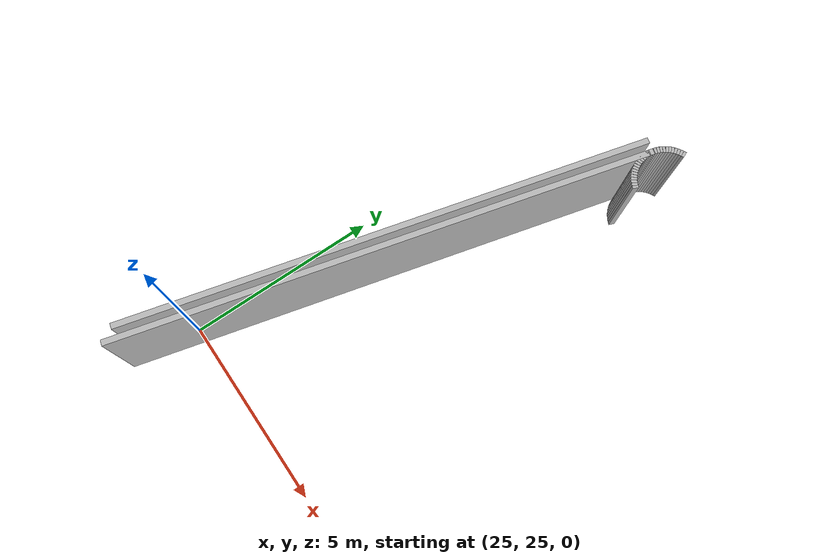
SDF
<sdf version="1.6">
 <model name="sps_0108">
  <static>1</static>
  <allow_auto_disable>0</allow_auto_disable>
  <link name="Wall1127">
   <collision name="collision"><geometry><box><size>13.2899 0.15 2.5</size></box></geometry></collision>
   <visual name="visual">
    <geometry><box><size>13.2899 0.15 2.5</size></box></geometry>
    <transparency>0.0</transparency>
   </visual>
   <pose>26.221 29.9924 1.25 0 0 -1.81855</pose>
  </link>
  <link name="Wall3856">
   <collision name="collision"><geometry><box><size>0.0697444 0.15 2.5</size></box></geometry></collision>
   <visual name="visual">
    <geometry><box><size>0.0697444 0.15 2.5</size></box></geometry>
    <transparency>0.0</transparency>
   </visual>
   <pose>28.6103 35.4265 1.25 0 -0 2.74727</pose>
  </link>
  <link name="Wall3857">
   <collision name="collision"><geometry><box><size>0.0697232 0.15 2.5</size></box></geometry></collision>
   <visual name="visual">
    <geometry><box><size>0.0697232 0.15 2.5</size></box></geometry>
    <transparency>0.0</transparency>
   </visual>
   <pose>28.5472 35.456 1.25 0 -0 2.66111</pose>
  </link>
  <link name="Wall3858">
   <collision name="collision"><geometry><box><size>0.069979 0.15 2.5</size></box></geometry></collision>
   <visual name="visual">
    <geometry><box><size>0.069979 0.15 2.5</size></box></geometry>
    <transparency>0.0</transparency>
   </visual>
   <pose>28.4867 35.4909 1.25 0 -0 2.5744</pose>
  </link>
  <link name="Wall3859">
   <collision name="collision"><geometry><box><size>0.0695601 0.15 2.5</size></box></geometry></collision>
   <visual name="visual">
    <geometry><box><size>0.0695601 0.15 2.5</size></box></geometry>
    <transparency>0.0</transparency>
   </visual>
   <pose>28.4296 35.5309 1.25 0 -0 2.48686</pose>
  </link>
  <link name="Wall3860">
   <collision name="collision"><geometry><box><size>0.0699406 0.15 2.5</size></box></geometry></collision>
   <visual name="visual">
    <geometry><box><size>0.0699406 0.15 2.5</size></box></geometry>
    <transparency>0.0</transparency>
   </visual>
   <pose>28.3763 35.5757 1.25 0 -0 2.40002</pose>
  </link>
  <link name="Wall3861">
   <collision name="collision"><geometry><box><size>0.069817 0.15 2.5</size></box></geometry></collision>
   <visual name="visual">
    <geometry><box><size>0.069817 0.15 2.5</size></box></geometry>
    <transparency>0.0</transparency>
   </visual>
   <pose>28.327 35.6251 1.25 0 -0 2.31043</pose>
  </link>
  <link name="Wall3862">
   <collision name="collision"><geometry><box><size>0.069709 0.15 2.5</size></box></geometry></collision>
   <visual name="visual">
    <geometry><box><size>0.069709 0.15 2.5</size></box></geometry>
    <transparency>0.0</transparency>
   </visual>
   <pose>28.2821 35.6785 1.25 0 -0 2.22831</pose>
  </link>
  <link name="Wall3863">
   <collision name="collision"><geometry><box><size>0.0698481 0.15 2.5</size></box></geometry></collision>
   <visual name="visual">
    <geometry><box><size>0.0698481 0.15 2.5</size></box></geometry>
    <transparency>0.0</transparency>
   </visual>
   <pose>28.2421 35.7356 1.25 0 -0 2.13505</pose>
  </link>
  <link name="Wall3864">
   <collision name="collision"><geometry><box><size>0.0697232 0.15 2.5</size></box></geometry></collision>
   <visual name="visual">
    <geometry><box><size>0.0697232 0.15 2.5</size></box></geometry>
    <transparency>0.0</transparency>
   </visual>
   <pose>28.2074 35.796 1.25 0 -0 2.05128</pose>
  </link>
  <link name="Wall3865">
   <collision name="collision"><geometry><box><size>0.0699135 0.15 2.5</size></box></geometry></collision>
   <visual name="visual">
    <geometry><box><size>0.0699135 0.15 2.5</size></box></geometry>
    <transparency>0.0</transparency>
   </visual>
   <pose>28.1778 35.8592 1.25 0 -0 1.96411</pose>
  </link>
  <link name="Wall3866">
   <collision name="collision"><geometry><box><size>0.0697662 0.15 2.5</size></box></geometry></collision>
   <visual name="visual">
    <geometry><box><size>0.0697662 0.15 2.5</size></box></geometry>
    <transparency>0.0</transparency>
   </visual>
   <pose>28.154 35.9248 1.25 0 -0 1.87373</pose>
  </link>
  <link name="Wall3867">
   <collision name="collision"><geometry><box><size>0.069671 0.15 2.5</size></box></geometry></collision>
   <visual name="visual">
    <geometry><box><size>0.069671 0.15 2.5</size></box></geometry>
    <transparency>0.0</transparency>
   </visual>
   <pose>28.136 35.9921 1.25 0 -0 1.7907</pose>
  </link>
  <link name="Wall3868">
   <collision name="collision"><geometry><box><size>0.0699746 0.15 2.5</size></box></geometry></collision>
   <visual name="visual">
    <geometry><box><size>0.0699746 0.15 2.5</size></box></geometry>
    <transparency>0.0</transparency>
   </visual>
   <pose>28.124 36.0608 1.25 0 -0 1.69937</pose>
  </link>
  <link name="Wall3869">
   <collision name="collision"><geometry><box><size>0.0697162 0.15 2.5</size></box></geometry></collision>
   <visual name="visual">
    <geometry><box><size>0.0697162 0.15 2.5</size></box></geometry>
    <transparency>0.0</transparency>
   </visual>
   <pose>28.1179 36.1303 1.25 0 -0 1.61721</pose>
  </link>
  <link name="Wall3870">
   <collision name="collision"><geometry><box><size>0.0698381 0.15 2.5</size></box></geometry></collision>
   <visual name="visual">
    <geometry><box><size>0.0698381 0.15 2.5</size></box></geometry>
    <transparency>0.0</transparency>
   </visual>
   <pose>28.1179 36.2 1.25 0 -0 1.52446</pose>
  </link>
  <link name="Wall3871">
   <collision name="collision"><geometry><box><size>0.069793 0.15 2.5</size></box></geometry></collision>
   <visual name="visual">
    <geometry><box><size>0.069793 0.15 2.5</size></box></geometry>
    <transparency>0.0</transparency>
   </visual>
   <pose>28.124 36.2695 1.25 0 -0 1.44189</pose>
  </link>
  <link name="Wall3872">
   <collision name="collision"><geometry><box><size>0.0698497 0.15 2.5</size></box></geometry></collision>
   <visual name="visual">
    <geometry><box><size>0.0698497 0.15 2.5</size></box></geometry>
    <transparency>0.0</transparency>
   </visual>
   <pose>28.136 36.3382 1.25 0 -0 1.35146</pose>
  </link>
  <link name="Wall3873">
   <collision name="collision"><geometry><box><size>0.0696464 0.15 2.5</size></box></geometry></collision>
   <visual name="visual">
    <geometry><box><size>0.0696464 0.15 2.5</size></box></geometry>
    <transparency>0.0</transparency>
   </visual>
   <pose>28.1541 36.4055 1.25 0 -0 1.26457</pose>
  </link>
  <link name="Wall3874">
   <collision name="collision"><geometry><box><size>0.0699699 0.15 2.5</size></box></geometry></collision>
   <visual name="visual">
    <geometry><box><size>0.0699699 0.15 2.5</size></box></geometry>
    <transparency>0.0</transparency>
   </visual>
   <pose>28.178 36.471 1.25 0 -0 1.17782</pose>
  </link>
  <link name="Wall3875">
   <collision name="collision"><geometry><box><size>0.0696691 0.15 2.5</size></box></geometry></collision>
   <visual name="visual">
    <geometry><box><size>0.0696691 0.15 2.5</size></box></geometry>
    <transparency>0.0</transparency>
   </visual>
   <pose>28.2075 36.5342 1.25 0 -0 1.08991</pose>
  </link>
  <link name="Wall3876">
   <collision name="collision"><geometry><box><size>0.0698246 0.15 2.5</size></box></geometry></collision>
   <visual name="visual">
    <geometry><box><size>0.0698246 0.15 2.5</size></box></geometry>
    <transparency>0.0</transparency>
   </visual>
   <pose>28.2425 36.5945 1.25 0 -0 1.00219</pose>
  </link>
  <link name="Wall3877">
   <collision name="collision"><geometry><box><size>0.0697425 0.15 2.5</size></box></geometry></collision>
   <visual name="visual">
    <geometry><box><size>0.0697425 0.15 2.5</size></box></geometry>
    <transparency>0.0</transparency>
   </visual>
   <pose>28.2825 36.6516 1.25 0 -0 0.916968</pose>
  </link>
  <link name="Wall3878">
   <collision name="collision"><geometry><box><size>0.0697644 0.15 2.5</size></box></geometry></collision>
   <visual name="visual">
    <geometry><box><size>0.0697644 0.15 2.5</size></box></geometry>
    <transparency>0.0</transparency>
   </visual>
   <pose>28.3273 36.705 1.25 0 -0 0.828097</pose>
  </link>
  <link name="Wall3879">
   <collision name="collision"><geometry><box><size>0.0698056 0.15 2.5</size></box></geometry></collision>
   <visual name="visual">
    <geometry><box><size>0.0698056 0.15 2.5</size></box></geometry>
    <transparency>0.0</transparency>
   </visual>
   <pose>28.3765 36.7543 1.25 0 -0 0.743344</pose>
  </link>
  <link name="Wall3880">
   <collision name="collision"><geometry><box><size>0.0697539 0.15 2.5</size></box></geometry></collision>
   <visual name="visual">
    <geometry><box><size>0.0697539 0.15 2.5</size></box></geometry>
    <transparency>0.0</transparency>
   </visual>
   <pose>28.43 36.7991 1.25 0 -0 0.652601</pose>
  </link>
  <link name="Wall3881">
   <collision name="collision"><geometry><box><size>0.0697732 0.15 2.5</size></box></geometry></collision>
   <visual name="visual">
    <geometry><box><size>0.0697732 0.15 2.5</size></box></geometry>
    <transparency>0.0</transparency>
   </visual>
   <pose>28.4871 36.8391 1.25 0 -0 0.569077</pose>
  </link>
  <link name="Wall3882">
   <collision name="collision"><geometry><box><size>0.0698857 0.15 2.5</size></box></geometry></collision>
   <visual name="visual">
    <geometry><box><size>0.0698857 0.15 2.5</size></box></geometry>
    <transparency>0.0</transparency>
   </visual>
   <pose>28.5474 36.874 1.25 0 -0 0.479271</pose>
  </link>
  <link name="Wall3883">
   <collision name="collision"><geometry><box><size>0.0699135 0.15 2.5</size></box></geometry></collision>
   <visual name="visual">
    <geometry><box><size>0.0699135 0.15 2.5</size></box></geometry>
    <transparency>0.0</transparency>
   </visual>
   <pose>28.6107 36.9035 1.25 0 -0 0.393314</pose>
  </link>
  <link name="Wall4635">
   <collision name="collision"><geometry><box><size>13.5902 0.15 2.5</size></box></geometry></collision>
   <visual name="visual">
    <geometry><box><size>13.5902 0.15 2.5</size></box></geometry>
    <transparency>0.0</transparency>
   </visual>
   <pose>26.4756 29.7736 1.25 0 -0 1.32296</pose>
  </link>
 </model>
</sdf>
